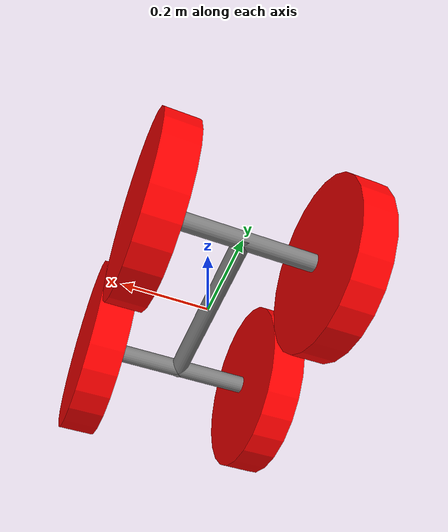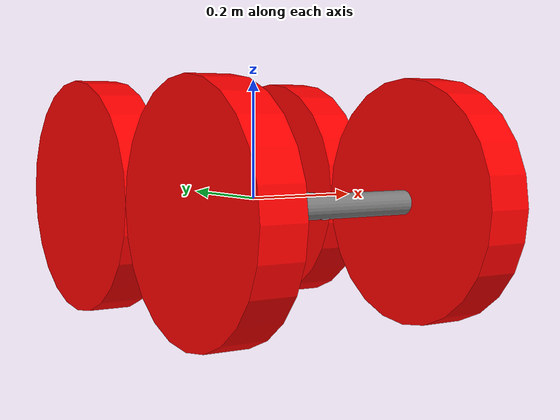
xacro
<?xml version="1.0"?>
<robot name="mockbot"
xmlns:sensor="http://playerstage.sourceforge.net/gazebo/xmlschema/#sensor"
       xmlns:controller="http://playerstage.sourceforge.net/gazebo/xmlschema/#controller"
       xmlns:interface="http://playerstage.sourceforge.net/gazebo/xmlschema/#interface"
       xmlns:xacro="http://ros.org/wiki/xacro">
   />

  <property name="PI" value="3.1415926535897931" />

  <property name="wheel_length" value="0.034" />
  <property name="wheel_radius" value="0.074792" />

  <!-- simplified box collision geometry for base -->
  <property name="base_size_x" value="0.65" />
  <property name="base_size_y" value="0.65" />
  <property name="base_size_z" value="0.23" />
  <property name="base_collision_size_z" value="0.04" />

	<link name="base_link">
		<visual>
			<geometry>
				<cylinder length="0.42" radius="0.02"/>
			</geometry>
			<origin rpy="1.57075 0 0" xyz="0 0 0"/>
			<material name="grey">
				<color rgba=".5 .5 .5 1"/>
			</material>
		</visual>
	</link>

	<link name="f_axle">
		<visual>
			<geometry>
				<cylinder length="0.42" radius="0.02"/>
			</geometry>
			<origin rpy="0 1.57075 0" xyz="0 0.2 0"/>
			<material name="grey">
				<color rgba=".5 .5 .5 1"/>
			</material>
		</visual>
	</link>

	<link name="r_axle">
		<visual>
			<geometry>
				<cylinder length="0.42" radius="0.02"/>
			</geometry>
			<origin rpy="0 1.57075 0" xyz="0 -0.2 0"/>
			<material name="grey">
				<color rgba=".5 .5 .5 1"/>
			</material>
		</visual>
	</link>

        <link name="lf_wheel">
                <visual>
                        <geometry>
                                <cylinder length="0.075" radius="0.20"/>
                        </geometry>
			<origin rpy="0 1.57075 0" xyz="-0.2 -0.2 0"/>
			<material name="red">
				<color rgba="1 0 0 1"/>
			</material>
                </visual>
        </link>

        <link name="rf_wheel">
                <visual>
                        <geometry>
                                <cylinder length="0.075" radius="0.20"/>
                        </geometry>
			<origin rpy="0 1.57075 0" xyz="0.2 -0.2 0"/>
			<material name="red">
				<color rgba="1 0 0 1"/>
			</material>
                </visual>
        </link>

	<link name="lr_wheel">
                <visual>
                        <geometry>
                                <cylinder length="0.075" radius="0.20"/>
                        </geometry>
			<origin rpy="0 1.57075 0" xyz="0.2 0.2 0"/>
			<material name="red">
				<color rgba="1 0 0 1"/>
			</material>
                </visual>
        </link>

	<link name="rr_wheel">
                <visual>
                        <geometry>
                                <cylinder length="0.075" radius="0.20"/>
                        </geometry>
			<origin rpy="0 1.57075 0" xyz="-0.2 0.2 0"/>
			<material name="red">
				<color rgba="1 0 0 1"/>
			</material>
                </visual>
        </link>

	<joint name="f_axle_base_link" type="fixed">
		<parent link="base_link"/>
		<child link="f_axle"/>
	</joint>

	<joint name="r_axle_base_link" type="fixed">
		<parent link="base_link"/>
		<child link="r_axle"/>
	</joint>

	<joint name="f_axle_lf_wheel" type="fixed">
		<parent link="f_axle"/>
		<child link="lf_wheel"/>
	</joint>

	<joint name="f_axle_rf_wheel" type="fixed">
		<parent link="f_axle"/>
		<child link="rf_wheel"/>
	</joint>

	<joint name="r_axle_lr_wheel" type="fixed">
		<parent link="r_axle"/>
		<child link="lr_wheel"/>
	</joint>

	<joint name="r_axle_rr_wheel" type="fixed">
		<parent link="r_axle"/>
		<child link="rr_wheel"/>
	</joint>

</robot>
